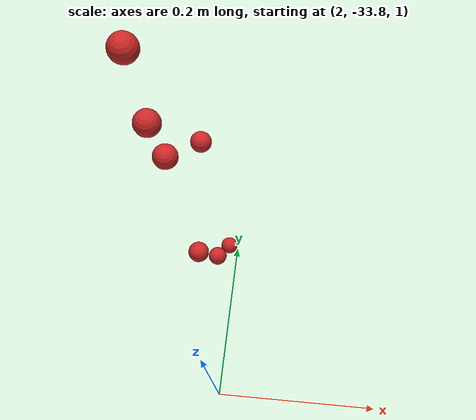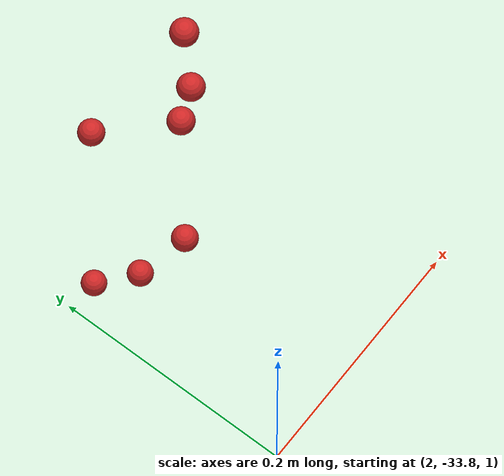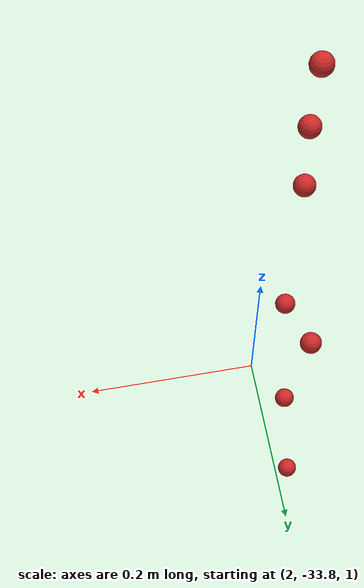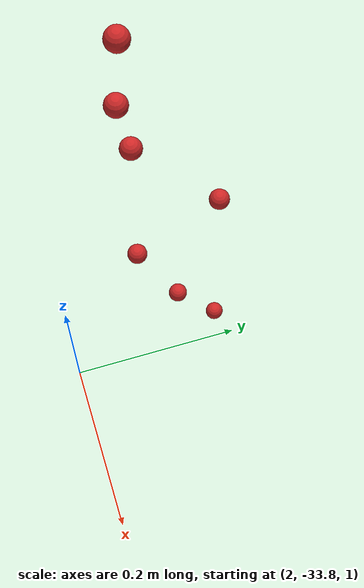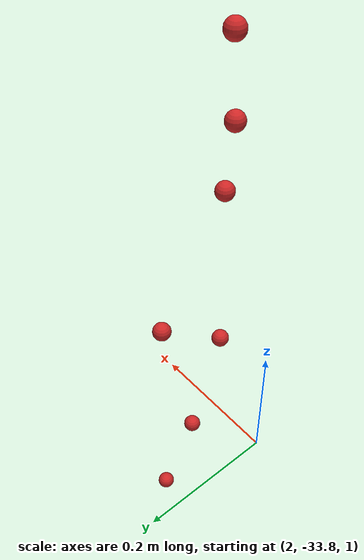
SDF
<sdf version="1.4">
 <world name="default">
  <model name="ground_plane">
   <static>1</static>
   <link name="link">
    <collision name="collision">
     <geometry><plane><normal>0 0 1</normal><size>100 100</size></plane></geometry>
     <surface><friction><ode><mu>100</mu><mu2>50</mu2></ode></friction></surface>
    </collision>
    <visual name="visual">
     <cast_shadows>0</cast_shadows>
     <geometry><plane><normal>0 0 1</normal><size>100 100</size></plane></geometry>
     <material>
      <script><uri>file://media/materials/scripts/gazebo.material</uri><name>Gazebo/Grey</name></script>
     </material>
    </visual>
    <velocity_decay><linear>0</linear><angular>0</angular></velocity_decay>
   </link>
  </model>
  <model name="apple328">
   <link name="my_apple">
    <inertial>
     <pose>2 0 0 0 -0 0</pose>
     <mass>1</mass>
     <inertia><ixx>1</ixx><ixy>0</ixy><ixz>0</ixz><iyy>1</iyy><iyz>0</iyz><izz>1</izz></inertia>
    </inertial>
    <collision name="my_apple_collision">
     <pose>2 0 1 0 -0 0</pose>
     <geometry><sphere><radius>0.01</radius></sphere></geometry>
    </collision>
    <visual name="my_apple_visual">
     <pose>2 0 1 0 -0 0</pose>
     <geometry><sphere><radius>0.01</radius></sphere></geometry>
     <material><script><name>Gazebo/Red</name><uri>__default__</uri></script></material>
    </visual>
    <gravity>0</gravity>
    <velocity_decay><linear>0</linear><angular>0</angular></velocity_decay>
   </link>
   <pose>0 -33.7241 0.592408 0 -0 0</pose>
   <static>0</static>
  </model>
  <model name="apple329">
   <link name="my_apple">
    <inertial>
     <pose>2 0 0 0 -0 0</pose>
     <mass>1</mass>
     <inertia><ixx>1</ixx><ixy>0</ixy><ixz>0</ixz><iyy>1</iyy><iyz>0</iyz><izz>1</izz></inertia>
    </inertial>
    <collision name="my_apple_collision">
     <pose>2 0 1 0 -0 0</pose>
     <geometry><sphere><radius>0.01</radius></sphere></geometry>
    </collision>
    <visual name="my_apple_visual">
     <pose>2 0 1 0 -0 0</pose>
     <geometry><sphere><radius>0.01</radius></sphere></geometry>
     <material><script><name>Gazebo/Red</name><uri>__default__</uri></script></material>
    </visual>
    <gravity>0</gravity>
    <velocity_decay><linear>0</linear><angular>0</angular></velocity_decay>
   </link>
   <pose>0 -33.7148 0.521818 0 -0 0</pose>
   <static>0</static>
  </model>
  <model name="apple330">
   <link name="my_apple">
    <inertial>
     <pose>2 0 0 0 -0 0</pose>
     <mass>1</mass>
     <inertia><ixx>1</ixx><ixy>0</ixy><ixz>0</ixz><iyy>1</iyy><iyz>0</iyz><izz>1</izz></inertia>
    </inertial>
    <collision name="my_apple_collision">
     <pose>2 0 1 0 -0 0</pose>
     <geometry><sphere><radius>0.01</radius></sphere></geometry>
    </collision>
    <visual name="my_apple_visual">
     <pose>2 0 1 0 -0 0</pose>
     <geometry><sphere><radius>0.01</radius></sphere></geometry>
     <material><script><name>Gazebo/Red</name><uri>__default__</uri></script></material>
    </visual>
    <gravity>0</gravity>
    <velocity_decay><linear>0</linear><angular>0</angular></velocity_decay>
   </link>
   <pose>0 -33.7194 0.676002 0 -0 0</pose>
   <static>0</static>
  </model>
  <model name="apple332">
   <link name="my_apple">
    <inertial>
     <pose>2 0 0 0 -0 0</pose>
     <mass>1</mass>
     <inertia><ixx>1</ixx><ixy>0</ixy><ixz>0</ixz><iyy>1</iyy><iyz>0</iyz><izz>1</izz></inertia>
    </inertial>
    <collision name="my_apple_collision">
     <pose>2 0 1 0 -0 0</pose>
     <geometry><sphere><radius>0.01</radius></sphere></geometry>
    </collision>
    <visual name="my_apple_visual">
     <pose>2 0 1 0 -0 0</pose>
     <geometry><sphere><radius>0.01</radius></sphere></geometry>
     <material><script><name>Gazebo/Red</name><uri>__default__</uri></script></material>
    </visual>
    <gravity>0</gravity>
    <velocity_decay><linear>0</linear><angular>0</angular></velocity_decay>
   </link>
   <pose>0 -33.6268 0.089269 0 -0 0</pose>
   <static>0</static>
  </model>
  <model name="apple336">
   <link name="my_apple">
    <inertial>
     <pose>2 0 0 0 -0 0</pose>
     <mass>1</mass>
     <inertia><ixx>1</ixx><ixy>0</ixy><ixz>0</ixz><iyy>1</iyy><iyz>0</iyz><izz>1</izz></inertia>
    </inertial>
    <collision name="my_apple_collision">
     <pose>2 0 1 0 -0 0</pose>
     <geometry><sphere><radius>0.01</radius></sphere></geometry>
    </collision>
    <visual name="my_apple_visual">
     <pose>2 0 1 0 -0 0</pose>
     <geometry><sphere><radius>0.01</radius></sphere></geometry>
     <material><script><name>Gazebo/Red</name><uri>__default__</uri></script></material>
    </visual>
    <gravity>0</gravity>
    <velocity_decay><linear>0</linear><angular>0</angular></velocity_decay>
   </link>
   <pose>0 -33.6726 0.178803 0 -0 0</pose>
   <static>0</static>
  </model>
  <model name="apple344">
   <link name="my_apple">
    <inertial>
     <pose>2 0 0 0 -0 0</pose>
     <mass>1</mass>
     <inertia><ixx>1</ixx><ixy>0</ixy><ixz>0</ixz><iyy>1</iyy><iyz>0</iyz><izz>1</izz></inertia>
    </inertial>
    <collision name="my_apple_collision">
     <pose>2 0 1 0 -0 0</pose>
     <geometry><sphere><radius>0.01</radius></sphere></geometry>
    </collision>
    <visual name="my_apple_visual">
     <pose>2 0 1 0 -0 0</pose>
     <geometry><sphere><radius>0.01</radius></sphere></geometry>
     <material><script><name>Gazebo/Red</name><uri>__default__</uri></script></material>
    </visual>
    <gravity>0</gravity>
    <velocity_decay><linear>0</linear><angular>0</angular></velocity_decay>
   </link>
   <pose>0 -33.6329 0.384771 0 -0 0</pose>
   <static>0</static>
  </model>
  <model name="apple349">
   <link name="my_apple">
    <inertial>
     <pose>2 0 0 0 -0 0</pose>
     <mass>1</mass>
     <inertia><ixx>1</ixx><ixy>0</ixy><ixz>0</ixz><iyy>1</iyy><iyz>0</iyz><izz>1</izz></inertia>
    </inertial>
    <collision name="my_apple_collision">
     <pose>2 0 1 0 -0 0</pose>
     <geometry><sphere><radius>0.01</radius></sphere></geometry>
    </collision>
    <visual name="my_apple_visual">
     <pose>2 0 1 0 -0 0</pose>
     <geometry><sphere><radius>0.01</radius></sphere></geometry>
     <material><script><name>Gazebo/Red</name><uri>__default__</uri></script></material>
    </visual>
    <gravity>0</gravity>
    <velocity_decay><linear>0</linear><angular>0</angular></velocity_decay>
   </link>
   <pose>0 -33.7156 0.311294 0 -0 0</pose>
   <static>0</static>
  </model>
 </world>
</sdf>
